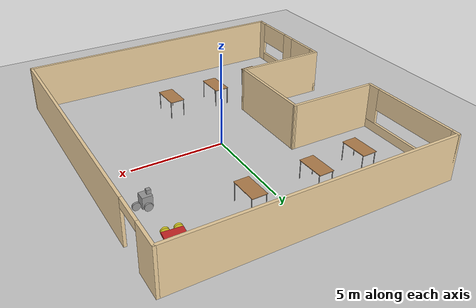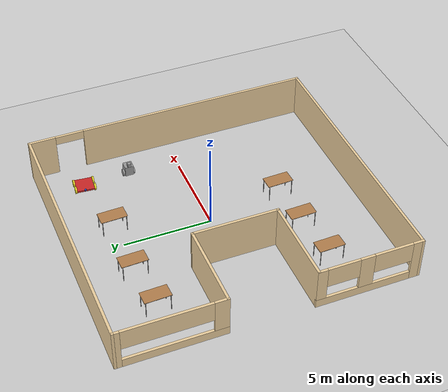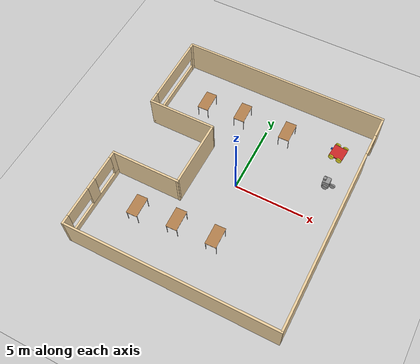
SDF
<sdf version="1.6">
 <world name="default">
  <plugin name="welcome" filename="libwelcome.so"/>
  <light name="sun" type="directional">
   <pose>0 0 10 0 -0 0</pose>
   <diffuse>0.8 0.8 0.8 1</diffuse>
   <specular>0.2 0.2 0.2 1</specular>
   <attenuation>
    <range>1000</range>
    <constant>0.9</constant>
    <linear>0.01</linear>
    <quadratic>0.001</quadratic>
   </attenuation>
   <direction>-0.5 0.1 -0.9</direction>
  </light>
  <model name="ground_plane">
   <static>1</static>
   <link name="link">
    <collision name="collision">
     <geometry><plane><normal>0 0 1</normal><size>100 100</size></plane></geometry>
     <surface>
      <contact><collide_bitmask>65535</collide_bitmask></contact>
      <friction><ode><mu>100</mu><mu2>50</mu2></ode></friction>
     </surface>
    </collision>
    <visual name="visual">
     <cast_shadows>0</cast_shadows>
     <geometry><plane><normal>0 0 1</normal><size>100 100</size></plane></geometry>
     <material>
      <script><uri>file://media/materials/scripts/gazebo.material</uri><name>Gazebo/Grey</name></script>
     </material>
    </visual>
   </link>
  </model>
  <gravity>0 0 -9.8</gravity>
  <magnetic_field>6e-06 2.3e-05 -4.2e-05</magnetic_field>
  <atmosphere type="adiabatic"/>
  <physics name="default_physics" default="0" type="ode">
   <max_step_size>0.001</max_step_size>
   <real_time_factor>1</real_time_factor>
   <real_time_update_rate>1000</real_time_update_rate>
  </physics>
  <scene><ambient>0.4 0.4 0.4 1</ambient><background>0.7 0.7 0.7 1</background><shadows>1</shadows></scene>
  <spherical_coordinates>
   <surface_model>EARTH_WGS84</surface_model>
   <latitude_deg>0</latitude_deg>
   <longitude_deg>0</longitude_deg>
   <elevation>0</elevation>
   <heading_deg>0</heading_deg>
  </spherical_coordinates>
  <model name="Building">
   <pose>-0.27995 -0.225979 0 0 -0 0</pose>
   <link name="Wall_21">
    <pose>7.4805 -7.8e-05 0 0 0 -1.5708</pose>
    <visual name="Wall_21_Visual_0">
     <pose>-7.53043 0 1.25 0 -0 0</pose>
     <geometry><box><size>1.57115 0.15 2.5</size></box></geometry>
     <material>
      <script><uri>file://media/materials/scripts/gazebo.material</uri><name>Gazebo/Grey</name></script>
      <ambient>0.921569 0.807843 0.615686 1</ambient>
     </material>
     <meta><layer>0</layer></meta>
    </visual>
    <collision name="Wall_21_Collision_0">
     <geometry><box><size>1.57115 0.15 2.5</size></box></geometry>
     <pose>-7.53043 0 1.25 0 -0 0</pose>
    </collision>
    <visual name="Wall_21_Visual_1">
     <pose>1.59668 0 1.25 0 -0 0</pose>
     <geometry><box><size>13.4386 0.15 2.5</size></box></geometry>
     <material>
      <script><uri>file://media/materials/scripts/gazebo.material</uri><name>Gazebo/Grey</name></script>
      <ambient>0.921569 0.807843 0.615686 1</ambient>
     </material>
     <meta><layer>0</layer></meta>
    </visual>
    <collision name="Wall_21_Collision_1">
     <geometry><box><size>13.4386 0.15 2.5</size></box></geometry>
     <pose>1.59668 0 1.25 0 -0 0</pose>
    </collision>
    <visual name="Wall_21_Visual_2">
     <pose>-5.93375 0 2.25 0 -0 0</pose>
     <geometry><box><size>1.62221 0.15 0.5</size></box></geometry>
     <material>
      <script><uri>file://media/materials/scripts/gazebo.material</uri><name>Gazebo/Grey</name></script>
      <ambient>0.921569 0.807843 0.615686 1</ambient>
     </material>
     <meta><layer>0</layer></meta>
    </visual>
    <collision name="Wall_21_Collision_2">
     <geometry><box><size>1.62221 0.15 0.5</size></box></geometry>
     <pose>-5.93375 0 2.25 0 -0 0</pose>
    </collision>
   </link>
   <link name="Wall_23">
    <collision name="Wall_23_Collision">
     <geometry><box><size>15.111 0.15 2.5</size></box></geometry>
     <pose>0 0 1.25 0 -0 0</pose>
    </collision>
    <visual name="Wall_23_Visual">
     <pose>0 0 1.25 0 -0 0</pose>
     <geometry><box><size>15.111 0.15 2.5</size></box></geometry>
     <material>
      <script><uri>file://media/materials/scripts/gazebo.material</uri><name>Gazebo/Grey</name></script>
      <ambient>0.921569 0.807843 0.615686 1</ambient>
     </material>
     <meta><layer>0</layer></meta>
    </visual>
    <pose>0 -8.24108 0 0 -0 3.14159</pose>
   </link>
   <link name="Wall_25">
    <pose>-7.4805 -5.31608 0 0 -0 1.5708</pose>
    <visual name="Wall_25_Visual_0">
     <pose>-2.67841 0 1.25 0 -0 0</pose>
     <geometry><box><size>0.64318 0.15 2.5</size></box></geometry>
     <material>
      <script><uri>file://media/materials/scripts/gazebo.material</uri><name>Gazebo/Grey</name></script>
      <ambient>0.921569 0.807843 0.615686 1</ambient>
     </material>
     <meta><layer>0</layer></meta>
    </visual>
    <collision name="Wall_25_Collision_0">
     <geometry><box><size>0.64318 0.15 2.5</size></box></geometry>
     <pose>-2.67841 0 1.25 0 -0 0</pose>
    </collision>
    <visual name="Wall_25_Visual_1">
     <pose>0.32159 0 0.25 0 -0 0</pose>
     <geometry><box><size>5.35682 0.15 0.5</size></box></geometry>
     <material>
      <script><uri>file://media/materials/scripts/gazebo.material</uri><name>Gazebo/Grey</name></script>
      <ambient>0.921569 0.807843 0.615686 1</ambient>
     </material>
     <meta><layer>0</layer></meta>
    </visual>
    <collision name="Wall_25_Collision_1">
     <geometry><box><size>5.35682 0.15 0.5</size></box></geometry>
     <pose>0.32159 0 0.25 0 -0 0</pose>
    </collision>
    <visual name="Wall_25_Visual_2">
     <pose>0.217062 0 1.5 0 -0 0</pose>
     <geometry><box><size>0.812026 0.15 2</size></box></geometry>
     <material>
      <script><uri>file://media/materials/scripts/gazebo.material</uri><name>Gazebo/Grey</name></script>
      <ambient>0.921569 0.807843 0.615686 1</ambient>
     </material>
     <meta><layer>0</layer></meta>
    </visual>
    <collision name="Wall_25_Collision_2">
     <geometry><box><size>0.812026 0.15 2</size></box></geometry>
     <pose>0.217062 0 1.5 0 -0 0</pose>
    </collision>
    <visual name="Wall_25_Visual_3">
     <pose>2.71705 0 1.5 0 -0 0</pose>
     <geometry><box><size>0.565891 0.15 2</size></box></geometry>
     <material>
      <script><uri>file://media/materials/scripts/gazebo.material</uri><name>Gazebo/Grey</name></script>
      <ambient>0.921569 0.807843 0.615686 1</ambient>
     </material>
     <meta><layer>0</layer></meta>
    </visual>
    <collision name="Wall_25_Collision_3">
     <geometry><box><size>0.565891 0.15 2</size></box></geometry>
     <pose>2.71705 0 1.5 0 -0 0</pose>
    </collision>
    <visual name="Wall_25_Visual_4">
     <pose>-1.27289 0 1.9 0 -0 0</pose>
     <geometry><box><size>2.16787 0.15 1.2</size></box></geometry>
     <material>
      <script><uri>file://media/materials/scripts/gazebo.material</uri><name>Gazebo/Grey</name></script>
      <ambient>0.921569 0.807843 0.615686 1</ambient>
     </material>
     <meta><layer>0</layer></meta>
    </visual>
    <collision name="Wall_25_Collision_4">
     <geometry><box><size>2.16787 0.15 1.2</size></box></geometry>
     <pose>-1.27289 0 1.9 0 -0 0</pose>
    </collision>
    <visual name="Wall_25_Visual_5">
     <pose>1.52859 0 1.9 0 -0 0</pose>
     <geometry><box><size>1.81103 0.15 1.2</size></box></geometry>
     <material>
      <script><uri>file://media/materials/scripts/gazebo.material</uri><name>Gazebo/Grey</name></script>
      <ambient>0.921569 0.807843 0.615686 1</ambient>
     </material>
     <meta><layer>0</layer></meta>
    </visual>
    <collision name="Wall_25_Collision_5">
     <geometry><box><size>1.81103 0.15 1.2</size></box></geometry>
     <pose>1.52859 0 1.9 0 -0 0</pose>
    </collision>
   </link>
   <link name="Wall_27">
    <pose>-7.40456 5.31608 0 0 0 -1.5708</pose>
    <visual name="Wall_27_Visual_0">
     <pose>-2.78728 0 1.25 0 -0 0</pose>
     <geometry><box><size>0.425441 0.15 2.5</size></box></geometry>
     <material>
      <script><uri>file://media/materials/scripts/gazebo.material</uri><name>Gazebo/Grey</name></script>
      <ambient>0.921569 0.807843 0.615686 1</ambient>
     </material>
     <meta><layer>0</layer></meta>
    </visual>
    <collision name="Wall_27_Collision_0">
     <geometry><box><size>0.425441 0.15 2.5</size></box></geometry>
     <pose>-2.78728 0 1.25 0 -0 0</pose>
    </collision>
    <visual name="Wall_27_Visual_1">
     <pose>0.21272 0 0.25 0 -0 0</pose>
     <geometry><box><size>5.57456 0.15 0.5</size></box></geometry>
     <material>
      <script><uri>file://media/materials/scripts/gazebo.material</uri><name>Gazebo/Grey</name></script>
      <ambient>0.921569 0.807843 0.615686 1</ambient>
     </material>
     <meta><layer>0</layer></meta>
    </visual>
    <collision name="Wall_27_Collision_1">
     <geometry><box><size>5.57456 0.15 0.5</size></box></geometry>
     <pose>0.21272 0 0.25 0 -0 0</pose>
    </collision>
    <visual name="Wall_27_Visual_2">
     <pose>2.60341 0 1.5 0 -0 0</pose>
     <geometry><box><size>0.793177 0.15 2</size></box></geometry>
     <material>
      <script><uri>file://media/materials/scripts/gazebo.material</uri><name>Gazebo/Grey</name></script>
      <ambient>0.921569 0.807843 0.615686 1</ambient>
     </material>
     <meta><layer>0</layer></meta>
    </visual>
    <collision name="Wall_27_Collision_2">
     <geometry><box><size>0.793177 0.15 2</size></box></geometry>
     <pose>2.60341 0 1.5 0 -0 0</pose>
    </collision>
    <visual name="Wall_27_Visual_3">
     <pose>-0.183868 0 1.9 0 -0 0</pose>
     <geometry><box><size>4.78138 0.15 1.2</size></box></geometry>
     <material>
      <script><uri>file://media/materials/scripts/gazebo.material</uri><name>Gazebo/Grey</name></script>
      <ambient>0.921569 0.807843 0.615686 1</ambient>
     </material>
     <meta><layer>0</layer></meta>
    </visual>
    <collision name="Wall_27_Collision_3">
     <geometry><box><size>4.78138 0.15 1.2</size></box></geometry>
     <pose>-0.183868 0 1.9 0 -0 0</pose>
    </collision>
   </link>
   <link name="Wall_29">
    <collision name="Wall_29_Collision">
     <geometry><box><size>5 0.15 2.5</size></box></geometry>
     <pose>0 0 1.25 0 -0 0</pose>
    </collision>
    <visual name="Wall_29_Visual">
     <pose>0 0 1.25 0 -0 0</pose>
     <geometry><box><size>5 0.15 2.5</size></box></geometry>
     <material>
      <script><uri>file://media/materials/scripts/gazebo.material</uri><name>Gazebo/Grey</name></script>
      <ambient>0.921569 0.807843 0.615686 1</ambient>
     </material>
     <meta><layer>0</layer></meta>
    </visual>
    <pose>-5.0555 -2.39108 0 0 -0 0</pose>
   </link>
   <link name="Wall_31">
    <collision name="Wall_31_Collision">
     <geometry><box><size>4.93122 0.15 2.5</size></box></geometry>
     <pose>0 0 1.25 0 -0 0</pose>
    </collision>
    <visual name="Wall_31_Visual">
     <pose>0 0 1.25 0 -0 0</pose>
     <geometry><box><size>4.93122 0.15 2.5</size></box></geometry>
     <material>
      <script><uri>file://media/materials/scripts/gazebo.material</uri><name>Gazebo/Grey</name></script>
      <ambient>0.921569 0.807843 0.615686 1</ambient>
     </material>
     <meta><layer>0</layer></meta>
    </visual>
    <pose>-5.01395 2.39108 0 0 -0 0</pose>
   </link>
   <link name="Wall_32">
    <collision name="Wall_32_Collision">
     <geometry><box><size>4.94559 0.15 2.5</size></box></geometry>
     <pose>0 0 1.25 0 -0 0</pose>
    </collision>
    <visual name="Wall_32_Visual">
     <pose>0 0 1.25 0 -0 0</pose>
     <geometry><box><size>4.94559 0.15 2.5</size></box></geometry>
     <material>
      <script><uri>file://media/materials/scripts/gazebo.material</uri><name>Gazebo/Grey</name></script>
      <ambient>0.921569 0.807843 0.615686 1</ambient>
     </material>
     <meta><layer>0</layer></meta>
    </visual>
    <pose>-2.62742 -0.006716 0 0 0 -1.5725</pose>
   </link>
   <link name="Wall_9">
    <collision name="Wall_9_Collision">
     <geometry><box><size>15.0351 0.15 2.5</size></box></geometry>
     <pose>0 0 1.25 0 -0 0</pose>
    </collision>
    <visual name="Wall_9_Visual">
     <pose>0 0 1.25 0 -0 0</pose>
     <geometry><box><size>15.0351 0.15 2.5</size></box></geometry>
     <material>
      <script><uri>file://media/materials/scripts/gazebo.material</uri><name>Gazebo/Grey</name></script>
      <ambient>0.921569 0.807843 0.615686 1</ambient>
     </material>
     <meta><layer>0</layer></meta>
    </visual>
    <pose>0.037971 8.241 0 0 0 -1.1e-05</pose>
   </link>
   <static>1</static>
  </model>
  <model name="4wheelRobot">
   <link name="link_0">
    <pose>-0.091667 0.0075 -0.016667 0 -0 0</pose>
    <inertial>
     <mass>1</mass>
     <inertia>
      <ixx>0.166667</ixx>
      <ixy>0</ixy>
      <ixz>0</ixz>
      <iyy>0.166667</iyy>
      <iyz>0</iyz>
      <izz>0.166667</izz>
     </inertia>
    </inertial>
    <visual name="visual">
     <geometry><box><size>1 1 0.1</size></box></geometry>
     <material>
      <lighting>1</lighting>
      <script><uri>file://media/materials/scripts/gazebo.material</uri><name>Gazebo/Red</name></script>
      <shader type="pixel"><normal_map>__default__</normal_map></shader>
      <ambient>0.3 0.3 0.3 1</ambient>
      <diffuse>0.7 0.7 0.7 1</diffuse>
      <specular>0.01 0.01 0.01 1</specular>
      <emissive>0 0 0 1</emissive>
     </material>
    </visual>
    <collision name="collision">
     <geometry><box><size>1 1 0.1</size></box></geometry>
     <surface>
      <friction>
       <ode><mu>1</mu><mu2>1</mu2><fdir1>0 0 0</fdir1><slip1>0</slip1><slip2>0</slip2></ode>
       <torsional>
        <coefficient>1</coefficient>
        <patch_radius>0</patch_radius>
        <surface_radius>0</surface_radius>
        <use_patch_radius>1</use_patch_radius>
        <ode><slip>0</slip></ode>
       </torsional>
      </friction>
      <bounce><restitution_coefficient>0</restitution_coefficient><threshold>1e+06</threshold></bounce>
      <contact>
       <collide_without_contact>0</collide_without_contact>
       <collide_without_contact_bitmask>1</collide_without_contact_bitmask>
       <collide_bitmask>1</collide_bitmask>
       <ode>
        <soft_cfm>0</soft_cfm>
        <soft_erp>0.2</soft_erp>
        <kp>1e+13</kp>
        <kd>1</kd>
        <max_vel>0.01</max_vel>
        <min_depth>0</min_depth>
       </ode>
       <bullet>
        <split_impulse>1</split_impulse>
        <split_impulse_penetration_threshold>-0.01</split_impulse_penetration_threshold>
        <soft_cfm>0</soft_cfm>
        <soft_erp>0.2</soft_erp>
        <kp>1e+13</kp>
        <kd>1</kd>
       </bullet>
      </contact>
     </surface>
    </collision>
   </link>
   <link name="link_1">
    <pose>-0.391667 -0.542519 -0.016667 1.5707 -0 0</pose>
    <inertial>
     <mass>1</mass>
     <inertia><ixx>0.145833</ixx><ixy>0</ixy><ixz>0</ixz><iyy>0.145833</iyy><iyz>0</iyz><izz>0.125</izz></inertia>
    </inertial>
    <visual name="visual">
     <geometry><cylinder><radius>0.2</radius><length>0.1</length></cylinder></geometry>
     <material>
      <lighting>1</lighting>
      <script><uri>file://media/materials/scripts/gazebo.material</uri><name>Gazebo/Yellow</name></script>
      <shader type="pixel"><normal_map>__default__</normal_map></shader>
      <ambient>0.3 0.3 0.3 1</ambient>
      <diffuse>0.7 0.7 0.7 1</diffuse>
      <specular>0.01 0.01 0.01 1</specular>
      <emissive>0 0 0 1</emissive>
     </material>
    </visual>
    <collision name="collision">
     <geometry><cylinder><radius>0.2</radius><length>0.1</length></cylinder></geometry>
     <surface>
      <friction>
       <ode><mu>1</mu><mu2>1</mu2><fdir1>0 0 0</fdir1><slip1>0</slip1><slip2>0</slip2></ode>
       <torsional>
        <coefficient>1</coefficient>
        <patch_radius>0</patch_radius>
        <surface_radius>0</surface_radius>
        <use_patch_radius>1</use_patch_radius>
        <ode><slip>0</slip></ode>
       </torsional>
      </friction>
      <bounce><restitution_coefficient>0</restitution_coefficient><threshold>1e+06</threshold></bounce>
      <contact>
       <collide_without_contact>0</collide_without_contact>
       <collide_without_contact_bitmask>1</collide_without_contact_bitmask>
       <collide_bitmask>1</collide_bitmask>
       <ode>
        <soft_cfm>0</soft_cfm>
        <soft_erp>0.2</soft_erp>
        <kp>1e+13</kp>
        <kd>1</kd>
        <max_vel>0.01</max_vel>
        <min_depth>0</min_depth>
       </ode>
       <bullet>
        <split_impulse>1</split_impulse>
        <split_impulse_penetration_threshold>-0.01</split_impulse_penetration_threshold>
        <soft_cfm>0</soft_cfm>
        <soft_erp>0.2</soft_erp>
        <kp>1e+13</kp>
        <kd>1</kd>
       </bullet>
      </contact>
     </surface>
    </collision>
   </link>
   <link name="link_1_clone">
    <pose>-0.391667 0.557519 -0.016667 1.5707 -0 0</pose>
    <inertial>
     <mass>1</mass>
     <inertia><ixx>0.145833</ixx><ixy>0</ixy><ixz>0</ixz><iyy>0.145833</iyy><iyz>0</iyz><izz>0.125</izz></inertia>
    </inertial>
    <visual name="visual">
     <geometry><cylinder><radius>0.2</radius><length>0.1</length></cylinder></geometry>
     <material>
      <lighting>1</lighting>
      <script><uri>file://media/materials/scripts/gazebo.material</uri><name>Gazebo/Yellow</name></script>
      <shader type="pixel"><normal_map>__default__</normal_map></shader>
      <ambient>0.3 0.3 0.3 1</ambient>
      <diffuse>0.7 0.7 0.7 1</diffuse>
      <specular>0.01 0.01 0.01 1</specular>
      <emissive>0 0 0 1</emissive>
     </material>
    </visual>
    <collision name="collision">
     <geometry><cylinder><radius>0.2</radius><length>0.1</length></cylinder></geometry>
     <surface>
      <friction>
       <ode><mu>1</mu><mu2>1</mu2><fdir1>0 0 0</fdir1><slip1>0</slip1><slip2>0</slip2></ode>
       <torsional>
        <coefficient>1</coefficient>
        <patch_radius>0</patch_radius>
        <surface_radius>0</surface_radius>
        <use_patch_radius>1</use_patch_radius>
        <ode><slip>0</slip></ode>
       </torsional>
      </friction>
      <bounce><restitution_coefficient>0</restitution_coefficient><threshold>1e+06</threshold></bounce>
      <contact>
       <collide_without_contact>0</collide_without_contact>
       <collide_without_contact_bitmask>1</collide_without_contact_bitmask>
       <collide_bitmask>1</collide_bitmask>
       <ode>
        <soft_cfm>0</soft_cfm>
        <soft_erp>0.2</soft_erp>
        <kp>1e+13</kp>
        <kd>1</kd>
        <max_vel>0.01</max_vel>
        <min_depth>0</min_depth>
       </ode>
       <bullet>
        <split_impulse>1</split_impulse>
        <split_impulse_penetration_threshold>-0.01</split_impulse_penetration_threshold>
        <soft_cfm>0</soft_cfm>
        <soft_erp>0.2</soft_erp>
        <kp>1e+13</kp>
        <kd>1</kd>
       </bullet>
      </contact>
     </surface>
    </collision>
   </link>
   <link name="link_1_clone_0">
    <pose>0.208333 -0.542519 -0.016667 1.5707 -0 0</pose>
    <inertial>
     <mass>1</mass>
     <inertia><ixx>0.145833</ixx><ixy>0</ixy><ixz>0</ixz><iyy>0.145833</iyy><iyz>0</iyz><izz>0.125</izz></inertia>
    </inertial>
    <visual name="visual">
     <geometry><cylinder><radius>0.2</radius><length>0.1</length></cylinder></geometry>
     <material>
      <lighting>1</lighting>
      <script><uri>file://media/materials/scripts/gazebo.material</uri><name>Gazebo/Yellow</name></script>
      <shader type="pixel"><normal_map>__default__</normal_map></shader>
      <ambient>0.3 0.3 0.3 1</ambient>
      <diffuse>0.7 0.7 0.7 1</diffuse>
      <specular>0.01 0.01 0.01 1</specular>
      <emissive>0 0 0 1</emissive>
     </material>
    </visual>
    <collision name="collision">
     <geometry><cylinder><radius>0.2</radius><length>0.1</length></cylinder></geometry>
     <surface>
      <friction>
       <ode><mu>1</mu><mu2>1</mu2><fdir1>0 0 0</fdir1><slip1>0</slip1><slip2>0</slip2></ode>
       <torsional>
        <coefficient>1</coefficient>
        <patch_radius>0</patch_radius>
        <surface_radius>0</surface_radius>
        <use_patch_radius>1</use_patch_radius>
        <ode><slip>0</slip></ode>
       </torsional>
      </friction>
      <bounce><restitution_coefficient>0</restitution_coefficient><threshold>1e+06</threshold></bounce>
      <contact>
       <collide_without_contact>0</collide_without_contact>
       <collide_without_contact_bitmask>1</collide_without_contact_bitmask>
       <collide_bitmask>1</collide_bitmask>
       <ode>
        <soft_cfm>0</soft_cfm>
        <soft_erp>0.2</soft_erp>
        <kp>1e+13</kp>
        <kd>1</kd>
        <max_vel>0.01</max_vel>
        <min_depth>0</min_depth>
       </ode>
       <bullet>
        <split_impulse>1</split_impulse>
        <split_impulse_penetration_threshold>-0.01</split_impulse_penetration_threshold>
        <soft_cfm>0</soft_cfm>
        <soft_erp>0.2</soft_erp>
        <kp>1e+13</kp>
        <kd>1</kd>
       </bullet>
      </contact>
     </surface>
    </collision>
   </link>
   <link name="link_1_clone_1">
    <pose>0.208333 0.557519 -0.016667 1.5707 -0 0</pose>
    <inertial>
     <mass>1</mass>
     <inertia><ixx>0.145833</ixx><ixy>0</ixy><ixz>0</ixz><iyy>0.145833</iyy><iyz>0</iyz><izz>0.125</izz></inertia>
    </inertial>
    <visual name="visual">
     <geometry><cylinder><radius>0.2</radius><length>0.1</length></cylinder></geometry>
     <material>
      <lighting>1</lighting>
      <script><uri>file://media/materials/scripts/gazebo.material</uri><name>Gazebo/Yellow</name></script>
      <shader type="pixel"><normal_map>__default__</normal_map></shader>
      <ambient>0.3 0.3 0.3 1</ambient>
      <diffuse>0.7 0.7 0.7 1</diffuse>
      <specular>0.01 0.01 0.01 1</specular>
      <emissive>0 0 0 1</emissive>
     </material>
    </visual>
    <collision name="collision">
     <geometry><cylinder><radius>0.2</radius><length>0.1</length></cylinder></geometry>
     <surface>
      <friction>
       <ode><mu>1</mu><mu2>1</mu2><fdir1>0 0 0</fdir1><slip1>0</slip1><slip2>0</slip2></ode>
       <torsional>
        <coefficient>1</coefficient>
        <patch_radius>0</patch_radius>
        <surface_radius>0</surface_radius>
        <use_patch_radius>1</use_patch_radius>
        <ode><slip>0</slip></ode>
       </torsional>
      </friction>
      <bounce><restitution_coefficient>0</restitution_coefficient><threshold>1e+06</threshold></bounce>
      <contact>
       <collide_without_contact>0</collide_without_contact>
       <collide_without_contact_bitmask>1</collide_without_contact_bitmask>
       <collide_bitmask>1</collide_bitmask>
       <ode>
        <soft_cfm>0</soft_cfm>
        <soft_erp>0.2</soft_erp>
        <kp>1e+13</kp>
        <kd>1</kd>
        <max_vel>0.01</max_vel>
        <min_depth>0</min_depth>
       </ode>
       <bullet>
        <split_impulse>1</split_impulse>
        <split_impulse_penetration_threshold>-0.01</split_impulse_penetration_threshold>
        <soft_cfm>0</soft_cfm>
        <soft_erp>0.2</soft_erp>
        <kp>1e+13</kp>
        <kd>1</kd>
       </bullet>
      </contact>
     </surface>
    </collision>
   </link>
   <link name="link_2">
    <pose>0.458333 -0.0375 0.083333 0 -0 0</pose>
    <inertial>
     <mass>1</mass>
     <inertia>
      <ixx>0.166667</ixx>
      <ixy>0</ixy>
      <ixz>0</ixz>
      <iyy>0.166667</iyy>
      <iyz>0</iyz>
      <izz>0.166667</izz>
     </inertia>
    </inertial>
    <visual name="visual">
     <geometry><box><size>0.1 0.1 0.1</size></box></geometry>
     <material>
      <lighting>1</lighting>
      <script><uri>file://media/materials/scripts/gazebo.material</uri><name>Gazebo/Blue</name></script>
      <shader type="pixel"><normal_map>__default__</normal_map></shader>
      <ambient>0.3 0.3 0.3 1</ambient>
      <diffuse>0.7 0.7 0.7 1</diffuse>
      <specular>0.01 0.01 0.01 1</specular>
      <emissive>0 0 0 1</emissive>
     </material>
    </visual>
    <collision name="collision">
     <geometry><box><size>0.1 0.1 0.1</size></box></geometry>
     <surface>
      <friction>
       <ode><mu>1</mu><mu2>1</mu2><fdir1>0 0 0</fdir1><slip1>0</slip1><slip2>0</slip2></ode>
       <torsional>
        <coefficient>1</coefficient>
        <patch_radius>0</patch_radius>
        <surface_radius>0</surface_radius>
        <use_patch_radius>1</use_patch_radius>
        <ode><slip>0</slip></ode>
       </torsional>
      </friction>
      <bounce><restitution_coefficient>0</restitution_coefficient><threshold>1e+06</threshold></bounce>
      <contact>
       <collide_without_contact>0</collide_without_contact>
       <collide_without_contact_bitmask>1</collide_without_contact_bitmask>
       <collide_bitmask>1</collide_bitmask>
       <ode>
        <soft_cfm>0</soft_cfm>
        <soft_erp>0.2</soft_erp>
        <kp>1e+13</kp>
        <kd>1</kd>
        <max_vel>0.01</max_vel>
        <min_depth>0</min_depth>
       </ode>
       <bullet>
        <split_impulse>1</split_impulse>
        <split_impulse_penetration_threshold>-0.01</split_impulse_penetration_threshold>
        <soft_cfm>0</soft_cfm>
        <soft_erp>0.2</soft_erp>
        <kp>1e+13</kp>
        <kd>1</kd>
       </bullet>
      </contact>
     </surface>
    </collision>
   </link>
   <joint name="base2LFwheel" type="revolute">
    <parent>link_0</parent>
    <child>link_1</child>
    <axis>
     <xyz>0 0 1</xyz>
     <use_parent_model_frame>0</use_parent_model_frame>
     <limit>
      <lower>-1.79769e+308</lower>
      <upper>1.79769e+308</upper>
      <effort>-1</effort>
      <velocity>-1</velocity>
     </limit>
     <dynamics>
      <spring_reference>0</spring_reference>
      <spring_stiffness>0</spring_stiffness>
      <damping>0</damping>
      <friction>0</friction>
     </dynamics>
    </axis>
    <physics>
     <ode><limit><cfm>0</cfm><erp>0.2</erp></limit><suspension><cfm>0</cfm><erp>0.2</erp></suspension></ode>
    </physics>
   </joint>
   <joint name="base2RFwheel" type="revolute">
    <parent>link_0</parent>
    <child>link_1_clone</child>
    <axis>
     <xyz>0 0 1</xyz>
     <use_parent_model_frame>0</use_parent_model_frame>
     <limit>
      <lower>-1.79769e+308</lower>
      <upper>1.79769e+308</upper>
      <effort>-1</effort>
      <velocity>-1</velocity>
     </limit>
     <dynamics>
      <spring_reference>0</spring_reference>
      <spring_stiffness>0</spring_stiffness>
      <damping>0</damping>
      <friction>0</friction>
     </dynamics>
    </axis>
    <physics>
     <ode><limit><cfm>0</cfm><erp>0.2</erp></limit><suspension><cfm>0</cfm><erp>0.2</erp></suspension></ode>
    </physics>
   </joint>
   <joint name="base2LBwheel" type="revolute">
    <parent>link_0</parent>
    <child>link_1_clone_0</child>
    <axis>
     <xyz>0 0 1</xyz>
     <use_parent_model_frame>0</use_parent_model_frame>
     <limit>
      <lower>-1.79769e+308</lower>
      <upper>1.79769e+308</upper>
      <effort>-1</effort>
      <velocity>-1</velocity>
     </limit>
     <dynamics>
      <spring_reference>0</spring_reference>
      <spring_stiffness>0</spring_stiffness>
      <damping>0</damping>
      <friction>0</friction>
     </dynamics>
    </axis>
    <physics>
     <ode><limit><cfm>0</cfm><erp>0.2</erp></limit><suspension><cfm>0</cfm><erp>0.2</erp></suspension></ode>
    </physics>
   </joint>
   <joint name="base2RBwheel" type="revolute">
    <parent>link_0</parent>
    <child>link_1_clone_1</child>
    <axis>
     <xyz>0 0 1</xyz>
     <use_parent_model_frame>0</use_parent_model_frame>
     <limit>
      <lower>-1.79769e+308</lower>
      <upper>1.79769e+308</upper>
      <effort>-1</effort>
      <velocity>-1</velocity>
     </limit>
     <dynamics>
      <spring_reference>0</spring_reference>
      <spring_stiffness>0</spring_stiffness>
      <damping>0</damping>
      <friction>0</friction>
     </dynamics>
    </axis>
    <physics>
     <ode><limit><cfm>0</cfm><erp>0.2</erp></limit><suspension><cfm>0</cfm><erp>0.2</erp></suspension></ode>
    </physics>
   </joint>
   <joint name="link_0_JOINT_5" type="revolute">
    <parent>link_0</parent>
    <child>link_2</child>
    <axis>
     <xyz>1 0 0</xyz>
     <use_parent_model_frame>0</use_parent_model_frame>
     <limit>
      <lower>-1.79769e+308</lower>
      <upper>1.79769e+308</upper>
      <effort>-1</effort>
      <velocity>-1</velocity>
     </limit>
     <dynamics>
      <spring_reference>0</spring_reference>
      <spring_stiffness>0</spring_stiffness>
      <damping>0</damping>
     </dynamics>
    </axis>
    <physics>
     <ode><limit><cfm>0</cfm><erp>0.2</erp></limit><suspension><cfm>0</cfm><erp>0.2</erp></suspension></ode>
    </physics>
   </joint>
   <static>0</static>
   <pose>5.17324 5.61366 0.21667 0 -7e-06 3.05399</pose>
  </model>
  <model name="table">
   <static>1</static>
   <link name="link">
    <collision name="surface">
     <pose>0 0 1 0 -0 0</pose>
     <geometry><box><size>1.5 0.8 0.03</size></box></geometry>
     <surface><friction><ode><mu>0.6</mu><mu2>0.6</mu2></ode></friction></surface>
    </collision>
    <visual name="visual1">
     <pose>0 0 1 0 -0 0</pose>
     <geometry><box><size>1.5 0.8 0.03</size></box></geometry>
     <material>
      <script><uri>file://media/materials/scripts/gazebo.material</uri><name>Gazebo/Wood</name></script>
     </material>
    </visual>
    <collision name="front_left_leg">
     <pose>0.68 0.38 0.5 0 -0 0</pose>
     <geometry><cylinder><radius>0.02</radius><length>1</length></cylinder></geometry>
    </collision>
    <visual name="front_left_leg">
     <pose>0.68 0.38 0.5 0 -0 0</pose>
     <geometry><cylinder><radius>0.02</radius><length>1</length></cylinder></geometry>
     <material>
      <script><uri>file://media/materials/scripts/gazebo.material</uri><name>Gazebo/Grey</name></script>
     </material>
    </visual>
    <collision name="front_right_leg">
     <pose>0.68 -0.38 0.5 0 -0 0</pose>
     <geometry><cylinder><radius>0.02</radius><length>1</length></cylinder></geometry>
    </collision>
    <visual name="front_right_leg">
     <pose>0.68 -0.38 0.5 0 -0 0</pose>
     <geometry><cylinder><radius>0.02</radius><length>1</length></cylinder></geometry>
     <material>
      <script><uri>file://media/materials/scripts/gazebo.material</uri><name>Gazebo/Grey</name></script>
     </material>
    </visual>
    <collision name="back_right_leg">
     <pose>-0.68 -0.38 0.5 0 -0 0</pose>
     <geometry><cylinder><radius>0.02</radius><length>1</length></cylinder></geometry>
    </collision>
    <visual name="back_right_leg">
     <pose>-0.68 -0.38 0.5 0 -0 0</pose>
     <geometry><cylinder><radius>0.02</radius><length>1</length></cylinder></geometry>
     <material>
      <script><uri>file://media/materials/scripts/gazebo.material</uri><name>Gazebo/Grey</name></script>
     </material>
    </visual>
    <collision name="back_left_leg">
     <pose>-0.68 0.38 0.5 0 -0 0</pose>
     <geometry><cylinder><radius>0.02</radius><length>1</length></cylinder></geometry>
    </collision>
    <visual name="back_left_leg">
     <pose>-0.68 0.38 0.5 0 -0 0</pose>
     <geometry><cylinder><radius>0.02</radius><length>1</length></cylinder></geometry>
     <material>
      <script><uri>file://media/materials/scripts/gazebo.material</uri><name>Gazebo/Grey</name></script>
     </material>
    </visual>
   </link>
   <pose>-4.81339 4.89168 0 0 0 -1.54267</pose>
  </model>
  <model name="table_clone">
   <static>1</static>
   <link name="link">
    <collision name="surface">
     <pose>0 0 1 0 -0 0</pose>
     <geometry><box><size>1.5 0.8 0.03</size></box></geometry>
     <surface><friction><ode><mu>0.6</mu><mu2>0.6</mu2></ode></friction></surface>
    </collision>
    <visual name="visual1">
     <pose>0 0 1 0 -0 0</pose>
     <geometry><box><size>1.5 0.8 0.03</size></box></geometry>
     <material>
      <script><uri>file://media/materials/scripts/gazebo.material</uri><name>Gazebo/Wood</name></script>
     </material>
    </visual>
    <collision name="front_left_leg">
     <pose>0.68 0.38 0.5 0 -0 0</pose>
     <geometry><cylinder><radius>0.02</radius><length>1</length></cylinder></geometry>
    </collision>
    <visual name="front_left_leg">
     <pose>0.68 0.38 0.5 0 -0 0</pose>
     <geometry><cylinder><radius>0.02</radius><length>1</length></cylinder></geometry>
     <material>
      <script><uri>file://media/materials/scripts/gazebo.material</uri><name>Gazebo/Grey</name></script>
     </material>
    </visual>
    <collision name="front_right_leg">
     <pose>0.68 -0.38 0.5 0 -0 0</pose>
     <geometry><cylinder><radius>0.02</radius><length>1</length></cylinder></geometry>
    </collision>
    <visual name="front_right_leg">
     <pose>0.68 -0.38 0.5 0 -0 0</pose>
     <geometry><cylinder><radius>0.02</radius><length>1</length></cylinder></geometry>
     <material>
      <script><uri>file://media/materials/scripts/gazebo.material</uri><name>Gazebo/Grey</name></script>
     </material>
    </visual>
    <collision name="back_right_leg">
     <pose>-0.68 -0.38 0.5 0 -0 0</pose>
     <geometry><cylinder><radius>0.02</radius><length>1</length></cylinder></geometry>
    </collision>
    <visual name="back_right_leg">
     <pose>-0.68 -0.38 0.5 0 -0 0</pose>
     <geometry><cylinder><radius>0.02</radius><length>1</length></cylinder></geometry>
     <material>
      <script><uri>file://media/materials/scripts/gazebo.material</uri><name>Gazebo/Grey</name></script>
     </material>
    </visual>
    <collision name="back_left_leg">
     <pose>-0.68 0.38 0.5 0 -0 0</pose>
     <geometry><cylinder><radius>0.02</radius><length>1</length></cylinder></geometry>
    </collision>
    <visual name="back_left_leg">
     <pose>-0.68 0.38 0.5 0 -0 0</pose>
     <geometry><cylinder><radius>0.02</radius><length>1</length></cylinder></geometry>
     <material>
      <script><uri>file://media/materials/scripts/gazebo.material</uri><name>Gazebo/Grey</name></script>
     </material>
    </visual>
   </link>
   <pose>-2.05925 5.16019 0 0 0 -1.54267</pose>
  </model>
  <model name="table_clone_0">
   <static>1</static>
   <link name="link">
    <collision name="surface">
     <pose>0 0 1 0 -0 0</pose>
     <geometry><box><size>1.5 0.8 0.03</size></box></geometry>
     <surface><friction><ode><mu>0.6</mu><mu2>0.6</mu2></ode></friction></surface>
    </collision>
    <visual name="visual1">
     <pose>0 0 1 0 -0 0</pose>
     <geometry><box><size>1.5 0.8 0.03</size></box></geometry>
     <material>
      <script><uri>file://media/materials/scripts/gazebo.material</uri><name>Gazebo/Wood</name></script>
     </material>
    </visual>
    <collision name="front_left_leg">
     <pose>0.68 0.38 0.5 0 -0 0</pose>
     <geometry><cylinder><radius>0.02</radius><length>1</length></cylinder></geometry>
    </collision>
    <visual name="front_left_leg">
     <pose>0.68 0.38 0.5 0 -0 0</pose>
     <geometry><cylinder><radius>0.02</radius><length>1</length></cylinder></geometry>
     <material>
      <script><uri>file://media/materials/scripts/gazebo.material</uri><name>Gazebo/Grey</name></script>
     </material>
    </visual>
    <collision name="front_right_leg">
     <pose>0.68 -0.38 0.5 0 -0 0</pose>
     <geometry><cylinder><radius>0.02</radius><length>1</length></cylinder></geometry>
    </collision>
    <visual name="front_right_leg">
     <pose>0.68 -0.38 0.5 0 -0 0</pose>
     <geometry><cylinder><radius>0.02</radius><length>1</length></cylinder></geometry>
     <material>
      <script><uri>file://media/materials/scripts/gazebo.material</uri><name>Gazebo/Grey</name></script>
     </material>
    </visual>
    <collision name="back_right_leg">
     <pose>-0.68 -0.38 0.5 0 -0 0</pose>
     <geometry><cylinder><radius>0.02</radius><length>1</length></cylinder></geometry>
    </collision>
    <visual name="back_right_leg">
     <pose>-0.68 -0.38 0.5 0 -0 0</pose>
     <geometry><cylinder><radius>0.02</radius><length>1</length></cylinder></geometry>
     <material>
      <script><uri>file://media/materials/scripts/gazebo.material</uri><name>Gazebo/Grey</name></script>
     </material>
    </visual>
    <collision name="back_left_leg">
     <pose>-0.68 0.38 0.5 0 -0 0</pose>
     <geometry><cylinder><radius>0.02</radius><length>1</length></cylinder></geometry>
    </collision>
    <visual name="back_left_leg">
     <pose>-0.68 0.38 0.5 0 -0 0</pose>
     <geometry><cylinder><radius>0.02</radius><length>1</length></cylinder></geometry>
     <material>
      <script><uri>file://media/materials/scripts/gazebo.material</uri><name>Gazebo/Grey</name></script>
     </material>
    </visual>
   </link>
   <pose>1.46526 5.12453 0 0 0 -1.54267</pose>
  </model>
  <model name="table_clone_1">
   <static>1</static>
   <link name="link">
    <collision name="surface">
     <pose>0 0 1 0 -0 0</pose>
     <geometry><box><size>1.5 0.8 0.03</size></box></geometry>
     <surface><friction><ode><mu>0.6</mu><mu2>0.6</mu2></ode></friction></surface>
    </collision>
    <visual name="visual1">
     <pose>0 0 1 0 -0 0</pose>
     <geometry><box><size>1.5 0.8 0.03</size></box></geometry>
     <material>
      <script><uri>file://media/materials/scripts/gazebo.material</uri><name>Gazebo/Wood</name></script>
     </material>
    </visual>
    <collision name="front_left_leg">
     <pose>0.68 0.38 0.5 0 -0 0</pose>
     <geometry><cylinder><radius>0.02</radius><length>1</length></cylinder></geometry>
    </collision>
    <visual name="front_left_leg">
     <pose>0.68 0.38 0.5 0 -0 0</pose>
     <geometry><cylinder><radius>0.02</radius><length>1</length></cylinder></geometry>
     <material>
      <script><uri>file://media/materials/scripts/gazebo.material</uri><name>Gazebo/Grey</name></script>
     </material>
    </visual>
    <collision name="front_right_leg">
     <pose>0.68 -0.38 0.5 0 -0 0</pose>
     <geometry><cylinder><radius>0.02</radius><length>1</length></cylinder></geometry>
    </collision>
    <visual name="front_right_leg">
     <pose>0.68 -0.38 0.5 0 -0 0</pose>
     <geometry><cylinder><radius>0.02</radius><length>1</length></cylinder></geometry>
     <material>
      <script><uri>file://media/materials/scripts/gazebo.material</uri><name>Gazebo/Grey</name></script>
     </material>
    </visual>
    <collision name="back_right_leg">
     <pose>-0.68 -0.38 0.5 0 -0 0</pose>
     <geometry><cylinder><radius>0.02</radius><length>1</length></cylinder></geometry>
    </collision>
    <visual name="back_right_leg">
     <pose>-0.68 -0.38 0.5 0 -0 0</pose>
     <geometry><cylinder><radius>0.02</radius><length>1</length></cylinder></geometry>
     <material>
      <script><uri>file://media/materials/scripts/gazebo.material</uri><name>Gazebo/Grey</name></script>
     </material>
    </visual>
    <collision name="back_left_leg">
     <pose>-0.68 0.38 0.5 0 -0 0</pose>
     <geometry><cylinder><radius>0.02</radius><length>1</length></cylinder></geometry>
    </collision>
    <visual name="back_left_leg">
     <pose>-0.68 0.38 0.5 0 -0 0</pose>
     <geometry><cylinder><radius>0.02</radius><length>1</length></cylinder></geometry>
     <material>
      <script><uri>file://media/materials/scripts/gazebo.material</uri><name>Gazebo/Grey</name></script>
     </material>
    </visual>
   </link>
   <pose>-4.87577 -4.74363 0 0 0 -1.54267</pose>
  </model>
  <model name="table_clone_2">
   <static>1</static>
   <link name="link">
    <collision name="surface">
     <pose>0 0 1 0 -0 0</pose>
     <geometry><box><size>1.5 0.8 0.03</size></box></geometry>
     <surface><friction><ode><mu>0.6</mu><mu2>0.6</mu2></ode></friction></surface>
    </collision>
    <visual name="visual1">
     <pose>0 0 1 0 -0 0</pose>
     <geometry><box><size>1.5 0.8 0.03</size></box></geometry>
     <material>
      <script><uri>file://media/materials/scripts/gazebo.material</uri><name>Gazebo/Wood</name></script>
     </material>
    </visual>
    <collision name="front_left_leg">
     <pose>0.68 0.38 0.5 0 -0 0</pose>
     <geometry><cylinder><radius>0.02</radius><length>1</length></cylinder></geometry>
    </collision>
    <visual name="front_left_leg">
     <pose>0.68 0.38 0.5 0 -0 0</pose>
     <geometry><cylinder><radius>0.02</radius><length>1</length></cylinder></geometry>
     <material>
      <script><uri>file://media/materials/scripts/gazebo.material</uri><name>Gazebo/Grey</name></script>
     </material>
    </visual>
    <collision name="front_right_leg">
     <pose>0.68 -0.38 0.5 0 -0 0</pose>
     <geometry><cylinder><radius>0.02</radius><length>1</length></cylinder></geometry>
    </collision>
    <visual name="front_right_leg">
     <pose>0.68 -0.38 0.5 0 -0 0</pose>
     <geometry><cylinder><radius>0.02</radius><length>1</length></cylinder></geometry>
     <material>
      <script><uri>file://media/materials/scripts/gazebo.material</uri><name>Gazebo/Grey</name></script>
     </material>
    </visual>
    <collision name="back_right_leg">
     <pose>-0.68 -0.38 0.5 0 -0 0</pose>
     <geometry><cylinder><radius>0.02</radius><length>1</length></cylinder></geometry>
    </collision>
    <visual name="back_right_leg">
     <pose>-0.68 -0.38 0.5 0 -0 0</pose>
     <geometry><cylinder><radius>0.02</radius><length>1</length></cylinder></geometry>
     <material>
      <script><uri>file://media/materials/scripts/gazebo.material</uri><name>Gazebo/Grey</name></script>
     </material>
    </visual>
    <collision name="back_left_leg">
     <pose>-0.68 0.38 0.5 0 -0 0</pose>
     <geometry><cylinder><radius>0.02</radius><length>1</length></cylinder></geometry>
    </collision>
    <visual name="back_left_leg">
     <pose>-0.68 0.38 0.5 0 -0 0</pose>
     <geometry><cylinder><radius>0.02</radius><length>1</length></cylinder></geometry>
     <material>
      <script><uri>file://media/materials/scripts/gazebo.material</uri><name>Gazebo/Grey</name></script>
     </material>
    </visual>
   </link>
   <pose>-2.08085 -4.42474 0 0 0 -1.54267</pose>
  </model>
  <model name="table_clone_3">
   <static>1</static>
   <link name="link">
    <collision name="surface">
     <pose>0 0 1 0 -0 0</pose>
     <geometry><box><size>1.5 0.8 0.03</size></box></geometry>
     <surface><friction><ode><mu>0.6</mu><mu2>0.6</mu2></ode></friction></surface>
    </collision>
    <visual name="visual1">
     <pose>0 0 1 0 -0 0</pose>
     <geometry><box><size>1.5 0.8 0.03</size></box></geometry>
     <material>
      <script><uri>file://media/materials/scripts/gazebo.material</uri><name>Gazebo/Wood</name></script>
     </material>
    </visual>
    <collision name="front_left_leg">
     <pose>0.68 0.38 0.5 0 -0 0</pose>
     <geometry><cylinder><radius>0.02</radius><length>1</length></cylinder></geometry>
    </collision>
    <visual name="front_left_leg">
     <pose>0.68 0.38 0.5 0 -0 0</pose>
     <geometry><cylinder><radius>0.02</radius><length>1</length></cylinder></geometry>
     <material>
      <script><uri>file://media/materials/scripts/gazebo.material</uri><name>Gazebo/Grey</name></script>
     </material>
    </visual>
    <collision name="front_right_leg">
     <pose>0.68 -0.38 0.5 0 -0 0</pose>
     <geometry><cylinder><radius>0.02</radius><length>1</length></cylinder></geometry>
    </collision>
    <visual name="front_right_leg">
     <pose>0.68 -0.38 0.5 0 -0 0</pose>
     <geometry><cylinder><radius>0.02</radius><length>1</length></cylinder></geometry>
     <material>
      <script><uri>file://media/materials/scripts/gazebo.material</uri><name>Gazebo/Grey</name></script>
     </material>
    </visual>
    <collision name="back_right_leg">
     <pose>-0.68 -0.38 0.5 0 -0 0</pose>
     <geometry><cylinder><radius>0.02</radius><length>1</length></cylinder></geometry>
    </collision>
    <visual name="back_right_leg">
     <pose>-0.68 -0.38 0.5 0 -0 0</pose>
     <geometry><cylinder><radius>0.02</radius><length>1</length></cylinder></geometry>
     <material>
      <script><uri>file://media/materials/scripts/gazebo.material</uri><name>Gazebo/Grey</name></script>
     </material>
    </visual>
    <collision name="back_left_leg">
     <pose>-0.68 0.38 0.5 0 -0 0</pose>
     <geometry><cylinder><radius>0.02</radius><length>1</length></cylinder></geometry>
    </collision>
    <visual name="back_left_leg">
     <pose>-0.68 0.38 0.5 0 -0 0</pose>
     <geometry><cylinder><radius>0.02</radius><length>1</length></cylinder></geometry>
     <material>
      <script><uri>file://media/materials/scripts/gazebo.material</uri><name>Gazebo/Grey</name></script>
     </material>
    </visual>
   </link>
   <pose>0.742098 -4.34563 0 0 0 -1.54267</pose>
  </model>
  <model name="3wheelsRobot">
   <link name="link_2">
    <pose>-0.06 0.004 0.04 0 -0 0</pose>
    <inertial>
     <mass>1</mass>
     <inertia>
      <ixx>0.166667</ixx>
      <ixy>0</ixy>
      <ixz>0</ixz>
      <iyy>0.166667</iyy>
      <iyz>0</iyz>
      <izz>0.166667</izz>
     </inertia>
    </inertial>
    <visual name="visual">
     <geometry><box><size>0.5 0.5 0.6</size></box></geometry>
     <material>
      <lighting>1</lighting>
      <script><uri>file://media/materials/scripts/gazebo.material</uri><name>Gazebo/Grey</name></script>
      <shader type="pixel"><normal_map>__default__</normal_map></shader>
      <ambient>0.3 0.3 0.3 1</ambient>
      <diffuse>0.7 0.7 0.7 1</diffuse>
      <specular>0.01 0.01 0.01 1</specular>
      <emissive>0 0 0 1</emissive>
     </material>
    </visual>
    <collision name="collision">
     <geometry><box><size>0.5 0.5 0.6</size></box></geometry>
     <surface>
      <friction>
       <ode><mu>1</mu><mu2>1</mu2><fdir1>0 0 0</fdir1><slip1>0</slip1><slip2>0</slip2></ode>
       <torsional>
        <coefficient>1</coefficient>
        <patch_radius>0</patch_radius>
        <surface_radius>0</surface_radius>
        <use_patch_radius>1</use_patch_radius>
        <ode><slip>0</slip></ode>
       </torsional>
      </friction>
      <bounce><restitution_coefficient>0</restitution_coefficient><threshold>1e+06</threshold></bounce>
      <contact>
       <collide_without_contact>0</collide_without_contact>
       <collide_without_contact_bitmask>1</collide_without_contact_bitmask>
       <collide_bitmask>1</collide_bitmask>
       <ode>
        <soft_cfm>0</soft_cfm>
        <soft_erp>0.2</soft_erp>
        <kp>1e+13</kp>
        <kd>1</kd>
        <max_vel>0.01</max_vel>
        <min_depth>0</min_depth>
       </ode>
       <bullet>
        <split_impulse>1</split_impulse>
        <split_impulse_penetration_threshold>-0.01</split_impulse_penetration_threshold>
        <soft_cfm>0</soft_cfm>
        <soft_erp>0.2</soft_erp>
        <kp>1e+13</kp>
        <kd>1</kd>
       </bullet>
      </contact>
     </surface>
    </collision>
   </link>
   <link name="link_3">
    <pose>-0.06 -0.296019 -0.16 1.5707 -0 0</pose>
    <inertial>
     <mass>1</mass>
     <inertia><ixx>0.145833</ixx><ixy>0</ixy><ixz>0</ixz><iyy>0.145833</iyy><iyz>0</iyz><izz>0.125</izz></inertia>
    </inertial>
    <visual name="visual">
     <geometry><cylinder><radius>0.2</radius><length>0.1</length></cylinder></geometry>
     <material>
      <lighting>1</lighting>
      <script><uri>file://media/materials/scripts/gazebo.material</uri><name>Gazebo/Grey</name></script>
      <shader type="pixel"><normal_map>__default__</normal_map></shader>
      <ambient>0.3 0.3 0.3 1</ambient>
      <diffuse>0.7 0.7 0.7 1</diffuse>
      <specular>0.01 0.01 0.01 1</specular>
      <emissive>0 0 0 1</emissive>
     </material>
    </visual>
    <collision name="collision">
     <geometry><cylinder><radius>0.2</radius><length>0.1</length></cylinder></geometry>
     <surface>
      <friction>
       <ode><mu>1</mu><mu2>1</mu2><fdir1>0 0 0</fdir1><slip1>0</slip1><slip2>0</slip2></ode>
       <torsional>
        <coefficient>1</coefficient>
        <patch_radius>0</patch_radius>
        <surface_radius>0</surface_radius>
        <use_patch_radius>1</use_patch_radius>
        <ode><slip>0</slip></ode>
       </torsional>
      </friction>
      <bounce><restitution_coefficient>0</restitution_coefficient><threshold>1e+06</threshold></bounce>
      <contact>
       <collide_without_contact>0</collide_without_contact>
       <collide_without_contact_bitmask>1</collide_without_contact_bitmask>
       <collide_bitmask>1</collide_bitmask>
       <ode>
        <soft_cfm>0</soft_cfm>
        <soft_erp>0.2</soft_erp>
        <kp>1e+13</kp>
        <kd>1</kd>
        <max_vel>0.01</max_vel>
        <min_depth>0</min_depth>
       </ode>
       <bullet>
        <split_impulse>1</split_impulse>
        <split_impulse_penetration_threshold>-0.01</split_impulse_penetration_threshold>
        <soft_cfm>0</soft_cfm>
        <soft_erp>0.2</soft_erp>
        <kp>1e+13</kp>
        <kd>1</kd>
       </bullet>
      </contact>
     </surface>
    </collision>
   </link>
   <link name="link_3_clone">
    <pose>-0.06 0.304019 -0.16 1.5707 -0 0</pose>
    <inertial>
     <mass>1</mass>
     <inertia><ixx>0.145833</ixx><ixy>0</ixy><ixz>0</ixz><iyy>0.145833</iyy><iyz>0</iyz><izz>0.125</izz></inertia>
    </inertial>
    <visual name="visual">
     <geometry><cylinder><radius>0.2</radius><length>0.1</length></cylinder></geometry>
     <material>
      <lighting>1</lighting>
      <script><uri>file://media/materials/scripts/gazebo.material</uri><name>Gazebo/Grey</name></script>
      <shader type="pixel"><normal_map>__default__</normal_map></shader>
      <ambient>0.3 0.3 0.3 1</ambient>
      <diffuse>0.7 0.7 0.7 1</diffuse>
      <specular>0.01 0.01 0.01 1</specular>
      <emissive>0 0 0 1</emissive>
     </material>
    </visual>
    <collision name="collision">
     <geometry><cylinder><radius>0.2</radius><length>0.1</length></cylinder></geometry>
     <surface>
      <friction>
       <ode><mu>1</mu><mu2>1</mu2><fdir1>0 0 0</fdir1><slip1>0</slip1><slip2>0</slip2></ode>
       <torsional>
        <coefficient>1</coefficient>
        <patch_radius>0</patch_radius>
        <surface_radius>0</surface_radius>
        <use_patch_radius>1</use_patch_radius>
        <ode><slip>0</slip></ode>
       </torsional>
      </friction>
      <bounce><restitution_coefficient>0</restitution_coefficient><threshold>1e+06</threshold></bounce>
      <contact>
       <collide_without_contact>0</collide_without_contact>
       <collide_without_contact_bitmask>1</collide_without_contact_bitmask>
       <collide_bitmask>1</collide_bitmask>
       <ode>
        <soft_cfm>0</soft_cfm>
        <soft_erp>0.2</soft_erp>
        <kp>1e+13</kp>
        <kd>1</kd>
        <max_vel>0.01</max_vel>
        <min_depth>0</min_depth>
       </ode>
       <bullet>
        <split_impulse>1</split_impulse>
        <split_impulse_penetration_threshold>-0.01</split_impulse_penetration_threshold>
        <soft_cfm>0</soft_cfm>
        <soft_erp>0.2</soft_erp>
        <kp>1e+13</kp>
        <kd>1</kd>
       </bullet>
      </contact>
     </surface>
    </collision>
   </link>
   <link name="link_3_clone_0">
    <pose>0.39 0.004 -0.16 1.5707 -0 0</pose>
    <inertial>
     <mass>1</mass>
     <inertia><ixx>0.145833</ixx><ixy>0</ixy><ixz>0</ixz><iyy>0.145833</iyy><iyz>0</iyz><izz>0.125</izz></inertia>
    </inertial>
    <visual name="visual">
     <geometry><cylinder><radius>0.2</radius><length>0.1</length></cylinder></geometry>
     <material>
      <lighting>1</lighting>
      <script><uri>file://media/materials/scripts/gazebo.material</uri><name>Gazebo/Grey</name></script>
      <shader type="pixel"><normal_map>__default__</normal_map></shader>
      <ambient>0.3 0.3 0.3 1</ambient>
      <diffuse>0.7 0.7 0.7 1</diffuse>
      <specular>0.01 0.01 0.01 1</specular>
      <emissive>0 0 0 1</emissive>
     </material>
    </visual>
    <collision name="collision">
     <geometry><cylinder><radius>0.2</radius><length>0.1</length></cylinder></geometry>
     <surface>
      <friction>
       <ode><mu>1</mu><mu2>1</mu2><fdir1>0 0 0</fdir1><slip1>0</slip1><slip2>0</slip2></ode>
       <torsional>
        <coefficient>1</coefficient>
        <patch_radius>0</patch_radius>
        <surface_radius>0</surface_radius>
        <use_patch_radius>1</use_patch_radius>
        <ode><slip>0</slip></ode>
       </torsional>
      </friction>
      <bounce><restitution_coefficient>0</restitution_coefficient><threshold>1e+06</threshold></bounce>
      <contact>
       <collide_without_contact>0</collide_without_contact>
       <collide_without_contact_bitmask>1</collide_without_contact_bitmask>
       <collide_bitmask>1</collide_bitmask>
       <ode>
        <soft_cfm>0</soft_cfm>
        <soft_erp>0.2</soft_erp>
        <kp>1e+13</kp>
        <kd>1</kd>
        <max_vel>0.01</max_vel>
        <min_depth>0</min_depth>
       </ode>
       <bullet>
        <split_impulse>1</split_impulse>
        <split_impulse_penetration_threshold>-0.01</split_impulse_penetration_threshold>
        <soft_cfm>0</soft_cfm>
        <soft_erp>0.2</soft_erp>
        <kp>1e+13</kp>
        <kd>1</kd>
       </bullet>
      </contact>
     </surface>
    </collision>
   </link>
   <link name="link_6">
    <pose>-0.21 -0.016 0.44 0 -0 0</pose>
    <inertial>
     <mass>1</mass>
     <inertia>
      <ixx>0.166667</ixx>
      <ixy>0</ixy>
      <ixz>0</ixz>
      <iyy>0.166667</iyy>
      <iyz>0</iyz>
      <izz>0.166667</izz>
     </inertia>
    </inertial>
    <visual name="visual">
     <geometry><box><size>0.2 0.2 0.2</size></box></geometry>
     <material>
      <lighting>1</lighting>
      <script><uri>file://media/materials/scripts/gazebo.material</uri><name>Gazebo/Grey</name></script>
      <shader type="pixel"><normal_map>__default__</normal_map></shader>
      <ambient>0.3 0.3 0.3 1</ambient>
      <diffuse>0.7 0.7 0.7 1</diffuse>
      <specular>0.01 0.01 0.01 1</specular>
      <emissive>0 0 0 1</emissive>
     </material>
    </visual>
    <collision name="collision">
     <geometry><box><size>0.2 0.2 0.2</size></box></geometry>
     <surface>
      <friction>
       <ode><mu>1</mu><mu2>1</mu2><fdir1>0 0 0</fdir1><slip1>0</slip1><slip2>0</slip2></ode>
       <torsional>
        <coefficient>1</coefficient>
        <patch_radius>0</patch_radius>
        <surface_radius>0</surface_radius>
        <use_patch_radius>1</use_patch_radius>
        <ode><slip>0</slip></ode>
       </torsional>
      </friction>
      <bounce><restitution_coefficient>0</restitution_coefficient><threshold>1e+06</threshold></bounce>
      <contact>
       <collide_without_contact>0</collide_without_contact>
       <collide_without_contact_bitmask>1</collide_without_contact_bitmask>
       <collide_bitmask>1</collide_bitmask>
       <ode>
        <soft_cfm>0</soft_cfm>
        <soft_erp>0.2</soft_erp>
        <kp>1e+13</kp>
        <kd>1</kd>
        <max_vel>0.01</max_vel>
        <min_depth>0</min_depth>
       </ode>
       <bullet>
        <split_impulse>1</split_impulse>
        <split_impulse_penetration_threshold>-0.01</split_impulse_penetration_threshold>
        <soft_cfm>0</soft_cfm>
        <soft_erp>0.2</soft_erp>
        <kp>1e+13</kp>
        <kd>1</kd>
       </bullet>
      </contact>
     </surface>
    </collision>
   </link>
   <joint name="link_2_JOINT_0" type="revolute">
    <parent>link_2</parent>
    <child>link_3</child>
    <axis>
     <xyz>0 0 1</xyz>
     <use_parent_model_frame>0</use_parent_model_frame>
     <limit>
      <lower>-1.79769e+308</lower>
      <upper>1.79769e+308</upper>
      <effort>-1</effort>
      <velocity>-1</velocity>
     </limit>
     <dynamics>
      <spring_reference>0</spring_reference>
      <spring_stiffness>0</spring_stiffness>
      <damping>0</damping>
     </dynamics>
    </axis>
    <physics>
     <ode><limit><cfm>0</cfm><erp>0.2</erp></limit><suspension><cfm>0</cfm><erp>0.2</erp></suspension></ode>
    </physics>
   </joint>
   <joint name="link_2_JOINT_1" type="revolute">
    <parent>link_2</parent>
    <child>link_3_clone</child>
    <pose>0 0 0 -0.02 0 0</pose>
    <axis>
     <xyz>0 0 1</xyz>
     <use_parent_model_frame>0</use_parent_model_frame>
     <limit>
      <lower>-1.79769e+308</lower>
      <upper>1.79769e+308</upper>
      <effort>-1</effort>
      <velocity>-1</velocity>
     </limit>
     <dynamics>
      <spring_reference>0</spring_reference>
      <spring_stiffness>0</spring_stiffness>
      <damping>0</damping>
     </dynamics>
    </axis>
    <physics>
     <ode><limit><cfm>0</cfm><erp>0.2</erp></limit><suspension><cfm>0</cfm><erp>0.2</erp></suspension></ode>
    </physics>
   </joint>
   <joint name="link_2_JOINT_2" type="revolute">
    <parent>link_2</parent>
    <child>link_3_clone_0</child>
    <axis>
     <xyz>0 0 1</xyz>
     <use_parent_model_frame>0</use_parent_model_frame>
     <limit>
      <lower>-1.79769e+308</lower>
      <upper>1.79769e+308</upper>
      <effort>-1</effort>
      <velocity>-1</velocity>
     </limit>
     <dynamics>
      <spring_reference>0</spring_reference>
      <spring_stiffness>0</spring_stiffness>
      <damping>0</damping>
     </dynamics>
    </axis>
    <physics>
     <ode><limit><cfm>0</cfm><erp>0.2</erp></limit><suspension><cfm>0</cfm><erp>0.2</erp></suspension></ode>
    </physics>
   </joint>
   <joint name="link_2_JOINT_3" type="revolute">
    <parent>link_2</parent>
    <child>link_6</child>
    <axis>
     <xyz>0 0 1</xyz>
     <use_parent_model_frame>0</use_parent_model_frame>
     <limit>
      <lower>-1.79769e+308</lower>
      <upper>1.79769e+308</upper>
      <effort>-1</effort>
      <velocity>-1</velocity>
     </limit>
     <dynamics>
      <spring_reference>0</spring_reference>
      <spring_stiffness>0</spring_stiffness>
      <damping>0</damping>
     </dynamics>
    </axis>
    <physics>
     <ode><limit><cfm>0</cfm><erp>0.2</erp></limit><suspension><cfm>0</cfm><erp>0.2</erp></suspension></ode>
    </physics>
   </joint>
   <static>0</static>
   <pose>5.5116 2.90756 0.36 0 -0 0</pose>
  </model>
 </world>
</sdf>
